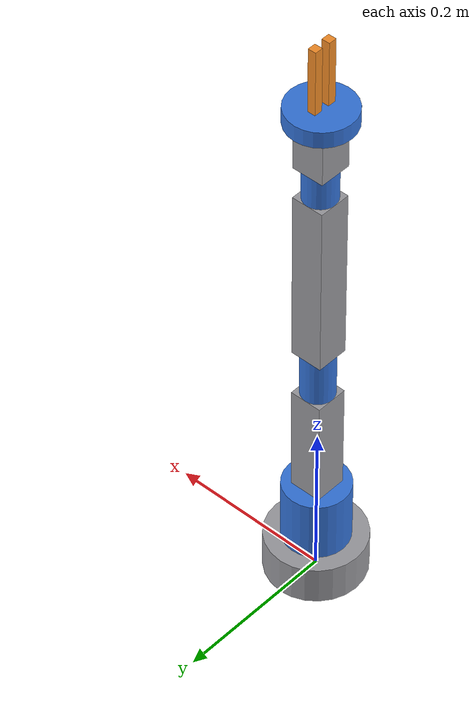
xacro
<?xml version="1.0"?>
<!-- Seven-DOF serial manipulator with a two-finger gripper. Every joint frame sits at the bottom of the
     link it moves; links extend along their local +z axis. Units: metres, radians, kilograms. -->
<robot name="seven_dof_arm" xmlns:xacro="http://www.ros.org/wiki/xacro">

  <xacro:include filename="inertial.xacro"/>

  <!-- ===== parameters ===== -->
  <xacro:property name="effort" value="30"/>
  <xacro:property name="velocity" value="1.0"/>

  <material name="grey"><color rgba="0.6 0.6 0.62 1"/></material>
  <material name="blue"><color rgba="0.2 0.45 0.85 1"/></material>
  <material name="orange"><color rgba="0.95 0.55 0.15 1"/></material>

  <!-- ===== segment macros ===== -->
  <!-- A revolute joint plus a cylindrical link standing on it. -->
  <xacro:macro name="cylinder_segment" params="name parent joint_z axis lower upper r h m color">
    <joint name="${name}_joint" type="revolute">
      <parent link="${parent}"/>
      <child link="${name}_link"/>
      <origin xyz="0 0 ${joint_z}" rpy="0 0 0"/>
      <axis xyz="${axis}"/>
      <limit lower="${lower}" upper="${upper}" effort="${effort}" velocity="${velocity}"/>
    </joint>
    <link name="${name}_link">
      <visual>
        <origin xyz="0 0 ${h/2}" rpy="0 0 0"/>
        <geometry><cylinder radius="${r}" length="${h}"/></geometry>
        <material name="${color}"/>
      </visual>
      <collision>
        <origin xyz="0 0 ${h/2}" rpy="0 0 0"/>
        <geometry><cylinder radius="${r}" length="${h}"/></geometry>
      </collision>
      <xacro:cylinder_inertial m="${m}" r="${r}" h="${h}">
        <origin xyz="0 0 ${h/2}" rpy="0 0 0"/>
      </xacro:cylinder_inertial>
    </link>
  </xacro:macro>

  <!-- A revolute joint plus a box-shaped link (x by y by z) standing on it. -->
  <xacro:macro name="box_segment" params="name parent joint_z axis lower upper x y z m color">
    <joint name="${name}_joint" type="revolute">
      <parent link="${parent}"/>
      <child link="${name}_link"/>
      <origin xyz="0 0 ${joint_z}" rpy="0 0 0"/>
      <axis xyz="${axis}"/>
      <limit lower="${lower}" upper="${upper}" effort="${effort}" velocity="${velocity}"/>
    </joint>
    <link name="${name}_link">
      <visual>
        <origin xyz="0 0 ${z/2}" rpy="0 0 0"/>
        <geometry><box size="${x} ${y} ${z}"/></geometry>
        <material name="${color}"/>
      </visual>
      <collision>
        <origin xyz="0 0 ${z/2}" rpy="0 0 0"/>
        <geometry><box size="${x} ${y} ${z}"/></geometry>
      </collision>
      <xacro:box_inertial m="${m}" x="${x}" y="${y}" z="${z}">
        <origin xyz="0 0 ${z/2}" rpy="0 0 0"/>
      </xacro:box_inertial>
    </link>
  </xacro:macro>

  <link name="world"/>
  <joint name="world_joint" type="fixed">
    <parent link="world"/>
    <child link="base_link"/>
  </joint>

  <!-- ===== the arm ===== -->
  <link name="base_link">
    <visual>
      <origin xyz="0 0 0.025" rpy="0 0 0"/>
      <geometry><cylinder radius="0.06" length="0.05"/></geometry>
      <material name="grey"/>
    </visual>
    <collision>
      <origin xyz="0 0 0.025" rpy="0 0 0"/>
      <geometry><cylinder radius="0.06" length="0.05"/></geometry>
    </collision>
    <xacro:cylinder_inertial m="1.0" r="0.06" h="0.05">
      <origin xyz="0 0 0.025" rpy="0 0 0"/>
    </xacro:cylinder_inertial>
  </link>

  <xacro:cylinder_segment name="shoulder_pan" parent="base_link" joint_z="0.05" axis="0 0 1"
                          lower="-2.6" upper="2.6" r="0.04" h="0.08" m="0.5" color="blue"/>
  <xacro:box_segment name="shoulder_pitch" parent="shoulder_pan_link" joint_z="0.08" axis="0 1 0"
                     lower="-1.2" upper="1.9" x="0.04" y="0.04" z="0.14" m="0.4" color="grey"/>
  <xacro:cylinder_segment name="elbow_roll" parent="shoulder_pitch_link" joint_z="0.14" axis="0 0 1"
                          lower="-2.6" upper="2.6" r="0.02" h="0.06" m="0.2" color="blue"/>
  <xacro:box_segment name="elbow_pitch" parent="elbow_roll_link" joint_z="0.06" axis="0 1 0"
                     lower="-1.6" upper="1.9" x="0.04" y="0.04" z="0.22" m="0.4" color="grey"/>
  <xacro:cylinder_segment name="wrist_roll" parent="elbow_pitch_link" joint_z="0.22" axis="0 0 1"
                          lower="-2.6" upper="2.6" r="0.02" h="0.04" m="0.1" color="blue"/>
  <xacro:box_segment name="wrist_pitch" parent="wrist_roll_link" joint_z="0.04" axis="0 1 0"
                     lower="-1.6" upper="1.9" x="0.04" y="0.04" z="0.06" m="0.15" color="grey"/>
  <xacro:cylinder_segment name="gripper_roll" parent="wrist_pitch_link" joint_z="0.06" axis="0 0 1"
                          lower="-2.6" upper="2.6" r="0.04" h="0.02" m="0.1" color="blue"/>

  <!-- ===== gripper: two prismatic fingers; the right one mirrors the left (mimic) ===== -->
  <xacro:macro name="finger" params="side y_sign">
    <joint name="${side}_finger_joint" type="prismatic">
      <parent link="gripper_roll_link"/>
      <child link="${side}_finger_link"/>
      <origin xyz="0 ${y_sign * 0.01} 0.02" rpy="0 0 0"/>
      <axis xyz="0 ${y_sign} 0"/>
      <limit lower="0" upper="0.03" effort="10" velocity="0.5"/>
    </joint>
    <link name="${side}_finger_link">
      <visual>
        <origin xyz="0 0 0.04" rpy="0 0 0"/>
        <geometry><box size="0.01 0.01 0.08"/></geometry>
        <material name="orange"/>
      </visual>
      <collision>
        <origin xyz="0 0 0.04" rpy="0 0 0"/>
        <geometry><box size="0.01 0.01 0.08"/></geometry>
      </collision>
      <xacro:box_inertial m="0.02" x="0.01" y="0.01" z="0.08">
        <origin xyz="0 0 0.04" rpy="0 0 0"/>
      </xacro:box_inertial>
    </link>
  </xacro:macro>

  <xacro:finger side="left" y_sign="1"/>
  <xacro:finger side="right" y_sign="-1"/>

  <!-- grasp_frame: the point between the fingertips that motion planning will target (Chapter 6/7) -->
  <joint name="grasp_frame_joint" type="fixed">
    <parent link="gripper_roll_link"/>
    <child link="grasp_frame"/>
    <origin xyz="0 0 0.10" rpy="0 0 0"/>
  </joint>
  <link name="grasp_frame"/>

  <!-- Simulation: ros2_control hardware + the Gazebo plugin that runs the controller_manager (Chapter 4). -->
  <xacro:include filename="arm.ros2_control.xacro"/>

</robot>

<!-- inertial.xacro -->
<!-- Inertia of uniform solid bodies, centred on the body. Use the same origin as the visual. -->
<robot xmlns:xacro="http://www.ros.org/wiki/xacro">

  <xacro:macro name="box_inertial" params="m x y z *origin">
    <inertial>
      <xacro:insert_block name="origin"/>
      <mass value="${m}"/>
      <inertia ixx="${m * (y*y + z*z) / 12}" ixy="0" ixz="0"
               iyy="${m * (x*x + z*z) / 12}" iyz="0"
               izz="${m * (x*x + y*y) / 12}"/>
    </inertial>
  </xacro:macro>

  <!-- A cylinder whose axis is the z axis of the given origin. -->
  <xacro:macro name="cylinder_inertial" params="m r h *origin">
    <inertial>
      <xacro:insert_block name="origin"/>
      <mass value="${m}"/>
      <inertia ixx="${m * (3*r*r + h*h) / 12}" ixy="0" ixz="0"
               iyy="${m * (3*r*r + h*h) / 12}" iyz="0"
               izz="${m * r*r / 2}"/>
    </inertial>
  </xacro:macro>

  <xacro:macro name="sphere_inertial" params="m r *origin">
    <inertial>
      <xacro:insert_block name="origin"/>
      <mass value="${m}"/>
      <inertia ixx="${2 * m * r*r / 5}" ixy="0" ixz="0" iyy="${2 * m * r*r / 5}" iyz="0" izz="${2 * m * r*r / 5}"/>
    </inertial>
  </xacro:macro>

</robot>
